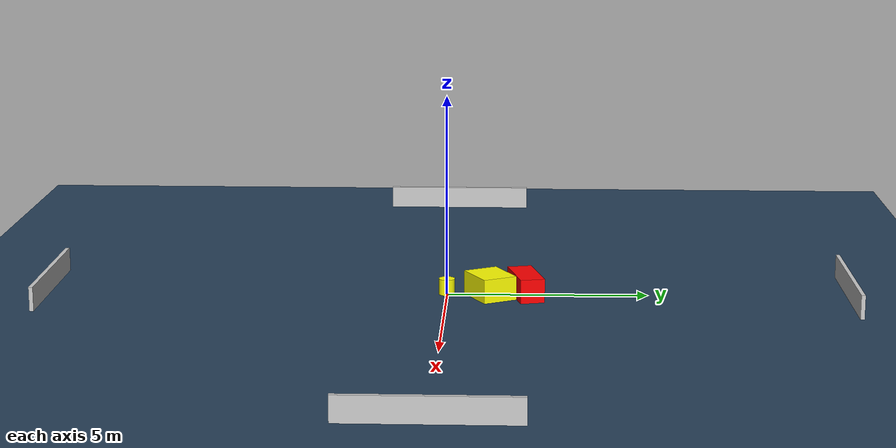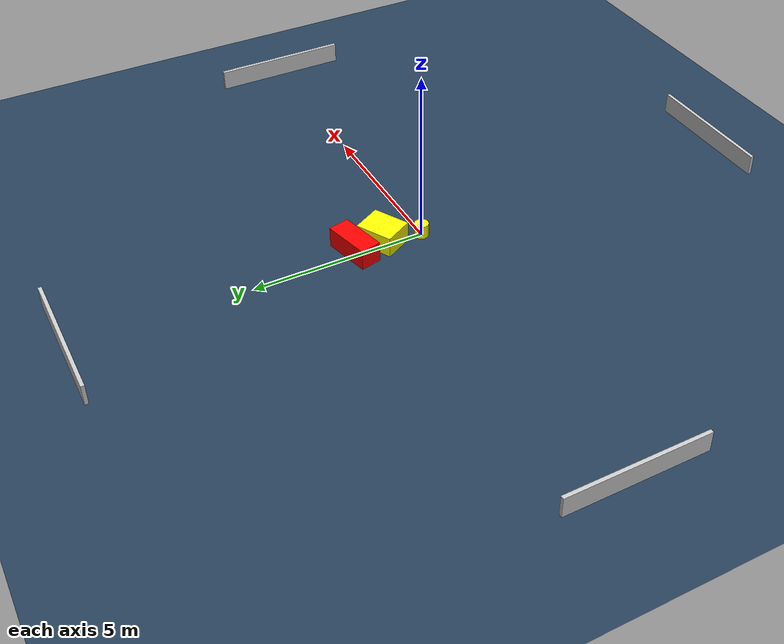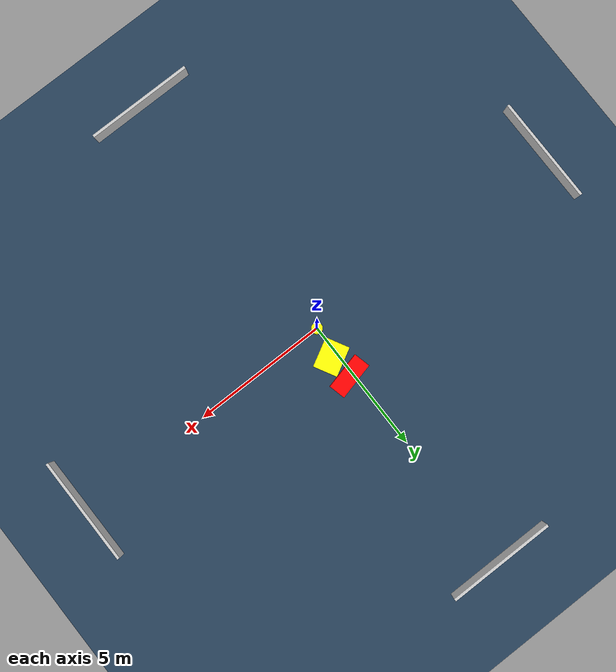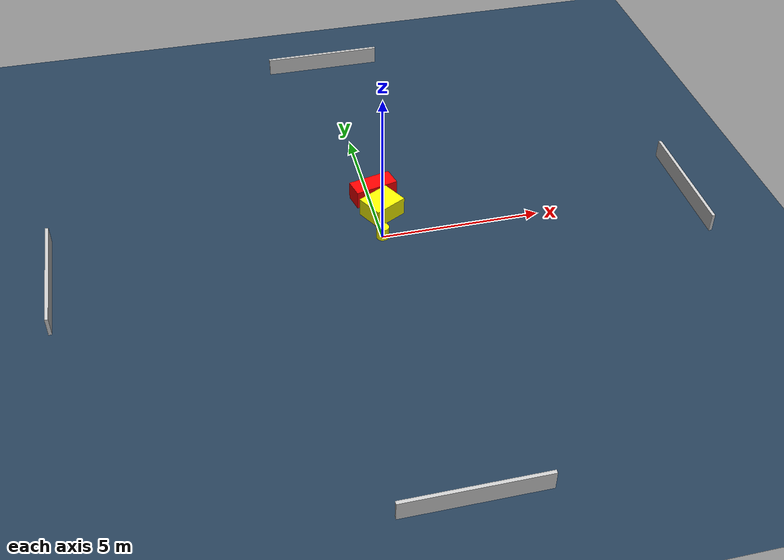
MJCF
<?xml version="1.0" ?>
<mujoco model="generated_environment">
  <option timestep="0.01" integrator="RK4" cone="elliptic"/>
  <default>
    <geom density="1"/>
  </default>
  <asset>
    <texture builtin="gradient" height="3072" name="skybox" rgb1="0.3 0.5 0.7" rgb2="0 0 0" type="skybox" width="512"/>
    <texture builtin="checker" height="300" name="groundplane" rgb1="0.2 0.3 0.4" rgb2="0.1 0.2 0.3" type="2d" width="300"/>
    <material name="groundplane" reflectance="0.2" texrepeat="5 5" texture="groundplane"/>
  </asset>
  <worldbody>
    <light dir="0 0 -1" directional="true" pos="0 0 1.5"/>
    <geom condim="3" friction="0.5 0.005 0.001" material="groundplane" name="floor" pos="0 0 0" size="0 0 0.05" type="plane"/>
    <body name="walls">
      <geom name="wall_1" condim="4" pos="-10.0 0.0 0.3" rgba="0.800000011920929 0.800000011920929 0.800000011920929 1.0" size="0.05 2.0 0.3" type="box"/>
      <geom name="wall_2" condim="4" pos="10.0 0.0 0.3" rgba="0.800000011920929 0.800000011920929 0.800000011920929 1.0" size="0.05 2.0 0.3" type="box"/>
      <geom name="wall_3" condim="4" pos="0.0 -10.0 0.3" rgba="0.800000011920929 0.800000011920929 0.800000011920929 1.0" size="2.0 0.05 0.3" type="box"/>
      <geom name="wall_4" condim="4" pos="0.0 10.0 0.3" rgba="0.800000011920929 0.800000011920929 0.800000011920929 1.0" size="2.0 0.05 0.3" type="box"/>
    </body>
    <body name="robot">
      <joint name="joint_x" type="slide" pos="0 0 0" axis="1 0 0"/>
      <joint name="joint_y" type="slide" pos="0 0 0" axis="0 1 0"/>
      <geom name="robot" type="cylinder" pos="0.0 0.0 0.2" size="0.2 0.2 0.0" mass="5.0" friction="1.0 0.005 0.0001" condim="4" rgba="1.0 1.0 0.0 1.0"/>
    </body>
    <body name="obstacle_1_movable">
      <geom name="obstacle_1_movable" condim="4" pos="0.2295011772181808 1.0858180165085762 0.3" euler="0 0 208.51144665655536" friction="0.0 0.005 0.001" rgba="1.0 1.0 0.0 1.0" size="0.5447503953569655 0.44338951628181666 0.3" type="box" mass="0.1"/>
      <joint type="free"/>
    </body>
    <body name="obstacle_2_static">
      <geom name="obstacle_2_static" condim="4" pos="0.14307157920686034 1.9738757883190854 0.3" euler="0 0 283.68802162016726" friction="0.0 0.005 0.001" rgba="1.0 0.0 0.0 1.0" size="0.30458653104387035 0.6962137561268016 0.3" type="box"/>
    </body>
  </worldbody>
  <actuator>
    <motor name="actuator_x" joint="joint_x" gear="1" ctrlrange="-1 1"/>
    <motor name="actuator_y" joint="joint_y" gear="1" ctrlrange="-1 1"/>
  </actuator>
</mujoco>
